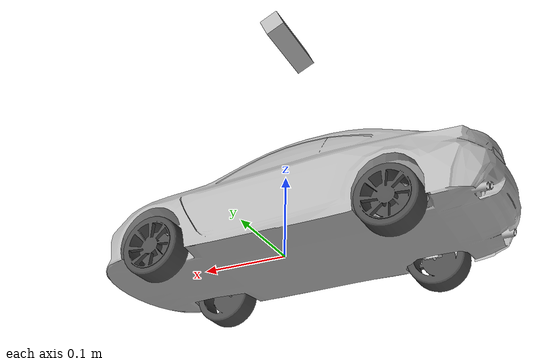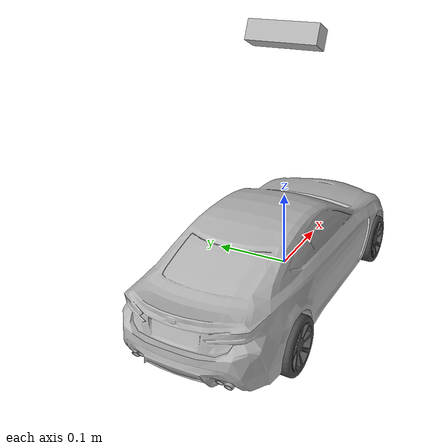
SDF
<?xml version='1.0'?>
<sdf version='1.6'>
  <model name='automobile'>
    <include>
      <uri>model://chassis</uri>
      <pose>0 0 0 0 0 0</pose>
    </include>

    <!-- including a left rear wheel -->
    <include>
      <uri>model://wheel_left</uri>
      <pose>-0.152 0.081 0 0 0 0</pose>
      <name>wheel_rear_left</name>
    </include>

    <!-- including a front rear wheel -->
    <include>
      <uri>model://wheel_right</uri>
      <pose>-0.152 -0.081 0 0 0 0</pose>
      <name>wheel_rear_right</name>
    </include>

    <!-- including a left steering comp. -->
    <include>
      <uri>model://steering_column</uri>
      <pose>0.112 0.0725 0 0 0 0</pose>
      <name>steer_left</name>
    </include>

    <!-- including a right steering comp. -->
    <include>
      <uri>model://steering_column</uri>
      <pose>0.112 -0.0725 0 0 0 0</pose>
      <name>steer_right</name>
    </include>

    <!-- including a left front wheel -->
    <include>
      <uri>model://wheel_left</uri>
      <pose>0.118 0.081 0 0 0 0</pose>
      <name>wheel_front_left</name>
    </include>

    <!-- including a right front wheel -->
    <include>
      <uri>model://wheel_right</uri>
      <pose>0.118 -0.081 0 0 0 0</pose>
      <name>wheel_front_right</name>
    </include>

    <!-- RealSense depth camera link -->
    <link name='realsense_link'>
      <!-- 카메라 위치/자세: x=0.0, y=0.0, z=0.18, pitch=+15deg -->
      <pose>0 0 0.3 0 0.436332 0</pose>
      <inertial>
        <pose>0 0 0 0 0 0</pose>
        <inertia>
          <ixx>0.001</ixx>
          <iyy>0.001</iyy>
          <izz>0.001</izz>
        </inertia>
        <mass>0.564</mass>
      </inertial>

      <visual name='realsense_visual'>
        <geometry>
          <box>
            <size>0.025 0.09 0.025</size>
          </box>
        </geometry>
      </visual>

      <collision name='realsense_collision'>
        <geometry>
          <box>
            <size>0.025 0.09 0.025</size>
          </box>
        </geometry>
      </collision>

      <!-- Depth camera (D455: HFOV ~87°, 848x480) -->
      <sensor name='cameradepth' type='depth'>
        <camera name='camera'>
          <!-- 87 deg ≈ 1.518436 rad -->
          <horizontal_fov>1.518436</horizontal_fov>
          <image>
            <width>848</width>
            <height>480</height>
          </image>
          <clip>
            <near>0.1</near>
            <far>15.0</far>
          </clip>
          <noise>
            <type>gaussian</type>
            <mean>0.0</mean>
            <stddev>0.005</stddev> <!-- ≈5mm -->
          </noise>
        </camera>
        <always_on>1</always_on>
        <update_rate>30</update_rate>
        <visualize>0</visualize>
      </sensor>

      <!-- Color camera (D455: HFOV ~90°, 640x480) -->
      <sensor name='cameracolor' type='camera'>
        <camera name='camera'>
          <!-- 90 deg ≈ 1.570796 rad -->
          <horizontal_fov>1.570796</horizontal_fov>
          <image>
            <width>640</width>
            <height>480</height>
            <format>RGB_INT8</format>
          </image>
          <clip>
            <near>0.1</near>
            <far>20.0</far>
          </clip>
          <noise>
            <type>gaussian</type>
            <mean>0.0</mean>
            <stddev>0.007</stddev>
          </noise>
        </camera>
        <always_on>1</always_on>
        <update_rate>30</update_rate>
        <visualize>1</visualize>
      </sensor>

      <!-- IR Left (HFOV ~87°, 848x480) -->
      <sensor name='cameraired1' type='camera'>
        <camera name='camera'>
          <!-- Depth와 동일 HFOV 사용 -->
          <horizontal_fov>1.518436</horizontal_fov>
          <image>
            <width>848</width>
            <height>480</height>
            <format>L_INT8</format>
          </image>
          <clip>
            <near>0.1</near>
            <far>15.0</far>
          </clip>
          <noise>
            <type>gaussian</type>
            <mean>0.0</mean>
            <stddev>0.05</stddev>
          </noise>
        </camera>
        <always_on>1</always_on>
        <update_rate>30</update_rate>
        <visualize>0</visualize>
      </sensor>

      <!-- IR Right (HFOV ~87°, 848x480) -->
      <sensor name='cameraired2' type='camera'>
        <camera name='camera'>
          <horizontal_fov>1.518436</horizontal_fov>
          <image>
            <width>848</width>
            <height>480</height>
            <format>L_INT8</format>
          </image>
          <clip>
            <near>0.1</near>
            <far>15.0</far>
          </clip>
          <noise>
            <type>gaussian</type>
            <mean>0.0</mean>
            <stddev>0.05</stddev>
          </noise>
        </camera>
        <always_on>1</always_on>
        <update_rate>30</update_rate>
        <visualize>0</visualize>
      </sensor>
    </link>

    <!-- includeing the car body -->
    <include>
      <uri>model://car_body</uri>
      <pose>-0.024 0.0 -0.028 0 0.0 0</pose>
      <name>car_body</name>
    </include>

    <!-- LIST OF JOINTS (원문 그대로) -->
    <joint name='joint_leftrear_rim' type='revolute'>
      <parent>chassis::link</parent>
      <child>wheel_rear_left::link_rim</child>
      <pose frame=''>0 0 0 0 -0 0</pose>
      <axis>
        <xyz>0 0 -1</xyz>
        <use_parent_model_frame>0</use_parent_model_frame>
        <limit>
          <lower>-1.79769e+308</lower>
          <upper>1.79769e+308</upper>
          <effort>-1</effort>
          <velocity>-1</velocity>
        </limit>
        <dynamics>
          <spring_reference>0</spring_reference>
          <spring_stiffness>0</spring_stiffness>
          <damping>0</damping>
          <friction>0</friction>
        </dynamics>
      </axis>
      <physics>
        <ode>
          <limit><cfm>0</cfm><erp>0.2</erp></limit>
          <suspension><cfm>0</cfm><erp>0.2</erp></suspension>
        </ode>
      </physics>
    </joint>

    <joint name='joint_rightrear_rim' type='revolute'>
      <parent>chassis::link</parent>
      <child>wheel_rear_right::link_rim</child>
      <pose frame=''>0 0 0 0 -0 0</pose>
      <axis>
        <xyz>0 0 -1</xyz>
        <use_parent_model_frame>0</use_parent_model_frame>
        <limit>
          <lower>-1.79769e+308</lower>
          <upper>1.79769e+308</upper>
          <effort>-1</effort>
          <velocity>-1</velocity>
        </limit>
        <dynamics>
          <spring_reference>0</spring_reference>
          <spring_stiffness>0</spring_stiffness>
          <damping>0</damping>
          <friction>0</friction>
        </dynamics>
      </axis>
      <physics>
        <ode>
          <limit><cfm>0</cfm><erp>0.2</erp></limit>
          <suspension><cfm>0</cfm><erp>0.2</erp></suspension>
        </ode>
      </physics>
    </joint>

    <!-- Front right joint between the chassis and the steering comp. -->
    <joint name='joint_leftfront_steer' type='revolute'>
      <parent>chassis::link</parent>
      <child>steer_left::link_steer</child>
      <pose frame=''>0 0 0.005 0 -0 0</pose>
      <axis>
        <xyz>0 1 0</xyz>
        <use_parent_model_frame>0</use_parent_model_frame>
        <limit>
          <lower>-1.79769e+308</lower>
          <upper>1.79769e+308</upper>
          <effort>-1</effort>
          <velocity>-1</velocity>
        </limit>
        <dynamics>
          <spring_reference>0</spring_reference>
          <spring_stiffness>0</spring_stiffness>
          <damping>0</damping>
          <friction>0</friction>
        </dynamics>
      </axis>
      <physics>
        <ode>
          <limit><cfm>0</cfm><erp>0.2</erp></limit>
          <suspension><cfm>0</cfm><erp>0.2</erp></suspension>
        </ode>
      </physics>
    </joint>

    <!-- Front left joint between the chassis and the steering comp. -->
    <joint name='joint_rightfront_steer' type='revolute'>
      <parent>chassis::link</parent>
      <child>steer_right::link_steer</child>
      <pose frame=''>0 0 -0.005 0 -0 0</pose>
      <axis>
        <xyz>0 1 0</xyz>
        <use_parent_model_frame>0</use_parent_model_frame>
        <limit>
          <lower>-1.79769e+308</lower>
          <upper>1.79769e+308</upper>
          <effort>-1</effort>
          <velocity>-1</velocity>
        </limit>
        <dynamics>
          <spring_reference>0</spring_reference>
          <spring_stiffness>0</spring_stiffness>
          <damping>0</damping>
          <friction>0</friction>
        </dynamics>
      </axis>
      <physics>
        <ode>
          <limit><cfm>0</cfm><erp>0.2</erp></limit>
          <suspension><cfm>0</cfm><erp>0.2</erp></suspension>
        </ode>
      </physics>
    </joint>

    <!-- Right joint between the steering and the rim   -->
    <joint name='joint_rightfront_rim' type='revolute'>
      <parent>steer_right::link_steer</parent>
      <child>wheel_front_right::link_rim</child>
      <pose frame=''>0 0 0 0 -0 0</pose>
      <axis>
        <xyz>0 0 -1</xyz>
        <use_parent_model_frame>0</use_parent_model_frame>
        <limit>
          <lower>-1.79769e+308</lower>
          <upper>1.79769e+308</upper>
          <effort>-1</effort>
          <velocity>-1</velocity>
        </limit>
        <dynamics>
          <spring_reference>0</spring_reference>
          <spring_stiffness>0</spring_stiffness>
          <damping>0</damping>
          <friction>0</friction>
        </dynamics>
      </axis>
      <physics>
        <ode>
          <limit><cfm>0</cfm><erp>0.2</erp></limit>
          <suspension><cfm>0</cfm><erp>0.2</erp></suspension>
        </ode>
      </physics>
    </joint>

    <!-- Left joint between the steering and the rim   -->
    <joint name='joint_leftfront_rim' type='revolute'>
      <parent>steer_left::link_steer</parent>
      <child>wheel_front_left::link_rim</child>
      <pose frame=''>0 0 0 0 -0 0</pose>
      <axis>
        <xyz>0 0 -1</xyz>
        <use_parent_model_frame>0</use_parent_model_frame>
        <limit>
          <lower>-1.79769e+308</lower>
          <upper>1.79769e+308</upper>
          <effort>-1</effort>
          <velocity>-1</velocity>
        </limit>
        <dynamics>
          <spring_reference>0</spring_reference>
          <spring_stiffness>0</spring_stiffness>
          <damping>0</damping>
          <friction>0</friction>
        </dynamics>
      </axis>
      <physics>
        <ode>
          <limit><cfm>0</cfm><erp>0.2</erp></limit>
          <suspension><cfm>0</cfm><erp>0.2</erp></suspension>
        </ode>
      </physics>
    </joint>

    <!-- fixed joint for the car body -->
    <joint name='joint_body' type='fixed'>
      <parent>chassis::link</parent>
      <child>car_body::link</child>
      <pose frame=''>0 0 0 0 -0 0</pose>
      <physics>
        <ode>
          <limit><cfm>0</cfm><erp>0.2</erp></limit>
          <suspension><cfm>0</cfm><erp>0.2</erp></suspension>
        </ode>
      </physics>
    </joint>

    <joint name='realsense_joint' type='fixed'>
      <parent>chassis::link</parent>
      <child>realsense_link</child>
      <pose>0 0 0 0 0 0</pose>
    </joint>

    <!-- RealSense Gazebo Plugin -->
    <plugin name='realsense_camera' filename='librealsense_gazebo_plugin.so'>
      <prefix>camera</prefix>

      <depthUpdateRate>30.0</depthUpdateRate>
      <colorUpdateRate>30.0</colorUpdateRate>
      <infraredUpdateRate>30.0</infraredUpdateRate>

      <depthTopicName>aligned_depth_to_color/image_raw</depthTopicName>
      <depthCameraInfoTopicName>depth/camera_info</depthCameraInfoTopicName>
      <colorTopicName>color/image_raw</colorTopicName>
      <colorCameraInfoTopicName>color/camera_info</colorCameraInfoTopicName>
      <infrared1TopicName>infra1/image_raw</infrared1TopicName>
      <infrared1CameraInfoTopicName>infra1/camera_info</infrared1CameraInfoTopicName>
      <infrared2TopicName>infra2/image_raw</infrared2TopicName>
      <infrared2CameraInfoTopicName>infra2/camera_info</infrared2CameraInfoTopicName>

      <colorOpticalframeName>camera_color_optical_frame</colorOpticalframeName>
      <depthOpticalframeName>camera_depth_optical_frame</depthOpticalframeName>
      <infrared1OpticalframeName>camera_left_ir_optical_frame</infrared1OpticalframeName>
      <infrared2OpticalframeName>camera_right_ir_optical_frame</infrared2OpticalframeName>

      <!-- depth range -->
      <rangeMinDepth>0.1</rangeMinDepth>
      <rangeMaxDepth>4.0</rangeMaxDepth>

      <!-- PointCloud on -->
      <pointCloud>true</pointCloud>
      <pointCloudTopicName>depth/color/points</pointCloudTopicName>
      <pointCloudCutoff>0.1</pointCloudCutoff>
    </plugin>

    <plugin name='CarLikeRobotPlugin' filename='libcar_plugin.so'>
      <wheelbase>0.26</wheelbase>
      <axletrack>0.162</axletrack>
      <wheelradius>0.0325</wheelradius>
      <speed_wheel_joints>
        <front_wheel_joints>
          <leftjoint>joint_leftfront_rim</leftjoint>
          <rightjoint>joint_rightfront_rim</rightjoint>
        </front_wheel_joints>
        <rear_wheel_joints>
          <leftjoint>joint_leftrear_rim</leftjoint>
          <rightjoint>joint_rightrear_rim</rightjoint>
        </rear_wheel_joints>
        <kp>0.01</kp>
        <ki>0.0</ki>
        <kd>0.0</kd>
      </speed_wheel_joints>
      <steer_wheel_joints>
        <leftjoint>joint_leftfront_steer</leftjoint>
        <rightjoint>joint_rightfront_steer</rightjoint>
        <kp>10</kp>
        <ki>0.0</ki>
        <kd>0.1</kd>
      </steer_wheel_joints>
      <initial_steer>0.0</initial_steer>
      <initial_speed>0.0</initial_speed>
      <robotNamespace>/</robotNamespace>
    </plugin>

    <plugin name='bno055' filename='libbno055_plugin.so'>
      <roll_noise_stddev>0.01</roll_noise_stddev>
      <pitch_noise_stddev>0.01</pitch_noise_stddev>
      <yaw_noise_stddev>0.01</yaw_noise_stddev>
      <angular_velocity_noise_stddev>0.005</angular_velocity_noise_stddev>
      <linear_acceleration_noise_stddev>0.1</linear_acceleration_noise_stddev>
      <imu_topic>/automobile/imu_raw</imu_topic>
      <imu_frame>base_link</imu_frame>
    </plugin>

    <plugin name='gps' filename='libgps_plugin.so'> </plugin>

    <plugin name='wheel_speed_encoder' filename='libwheel_speed_plugin.so'>
      <ros>
        <namespace>/automobile</namespace>
      </ros>
      <joint_name>joint_leftrear_rim</joint_name>
      <wheel_radius>0.0325</wheel_radius>
      <topic>/automobile/wheel_speed</topic>
      <twist_topic>/automobile/wheel_twist</twist_topic>
      <twist_frame>base_link</twist_frame>
      <twist_noise_stddev>0.01</twist_noise_stddev>
      <deadband>0.000</deadband>
      <update_rate>50</update_rate>
    </plugin>

    <plugin name='steering_angle' filename='libsteering_angle_plugin.so'>
      <ros>
        <namespace>/automobile</namespace>
      </ros>
      <left_joint>joint_leftfront_steer</left_joint>
      <right_joint>joint_rightfront_steer</right_joint>
      <topic>/automobile/steering_angle</topic>
      <update_rate>50</update_rate>
    </plugin>

  </model>
</sdf>

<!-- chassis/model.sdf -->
<sdf version='1.6'>
  <model name='chassis'>
    <link name='link'>
      <inertial>
        <mass>0.26244</mass>
        <inertia>
          <ixx>0.00283444</ixx>
          <ixy>0</ixy>
          <ixz>0</ixz>
          <iyy>0.00039867</iyy>
          <iyz>0</iyz>
          <izz>0.00323293</izz>
        </inertia>
        <pose frame=''>0 0 0 0 -0 0</pose>
      </inertial>
      <pose frame=''>0 0 0 0 0 1.5708</pose>
      <gravity>1</gravity>
      <kinematic>0</kinematic>
      <enable_wind>0</enable_wind>
      <visual name='visual'>
        <pose frame=''>0 0 -0.0065 0 0 -1.57079</pose>
        <geometry>
          <mesh>
            <uri>model://chassis/meshes/chassisV5.dae</uri>
            <scale>1 1 1</scale>
          </mesh>
        </geometry>
        <material>
          <lighting>1</lighting>
          <shader type='vertex'>
            <normal_map>__default__</normal_map>
          </shader>
          <ambient>0.6 0.6 0.6 1</ambient>
          <diffuse>0.85 0.85 0.85 1</diffuse>
          <specular>0.6 0.6 0.6 1</specular>
          <emissive>0 0 0 1</emissive>
        </material>
        <transparency>0</transparency>
        <cast_shadows>1</cast_shadows>
      </visual>
      <collision name='collision'>
        <laser_retro>0</laser_retro>
        <max_contacts>10</max_contacts>
        <pose frame=''>0 0 0 0 -0 0</pose>
        <geometry>
          <box>
            <size>0.135 0.36 0.002</size>
          </box>
        </geometry>
        <surface>
          <friction>
            <ode>
              <mu>1</mu>
              <mu2>1</mu2>
              <fdir1>0 0 0</fdir1>
              <slip1>0</slip1>
              <slip2>0</slip2>
            </ode>
            <torsional>
              <coefficient>1</coefficient>
              <patch_radius>0</patch_radius>
              <surface_radius>0</surface_radius>
              <use_patch_radius>1</use_patch_radius>
              <ode>
                <slip>0</slip>
              </ode>
            </torsional>
          </friction>
          <bounce>
            <restitution_coefficient>0</restitution_coefficient>
            <threshold>1e+06</threshold>
          </bounce>
          <contact>
            <collide_without_contact>0</collide_without_contact>
            <collide_without_contact_bitmask>1</collide_without_contact_bitmask>
            <collide_bitmask>1</collide_bitmask>
            <ode>
              <soft_cfm>0</soft_cfm>
              <soft_erp>0.2</soft_erp>
              <kp>1e+13</kp>
              <kd>1</kd>
              <max_vel>0.01</max_vel>
              <min_depth>0</min_depth>
            </ode>
            <bullet>
              <split_impulse>1</split_impulse>
              <split_impulse_penetration_threshold>-0.01</split_impulse_penetration_threshold>
              <soft_cfm>0</soft_cfm>
              <soft_erp>0.2</soft_erp>
              <kp>1e+13</kp>
              <kd>1</kd>
            </bullet>
          </contact>
        </surface>
      </collision>
    </link>
  </model>
</sdf>

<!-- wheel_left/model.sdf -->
<sdf version='1.6'>
  <model name='wheel_left'>

    <link name='link_rim'>
      <inertial>
        <mass>0.038</mass>
        <inertia>
          <ixx>0.00001283</ixx>
          <ixy>0</ixy>
          <ixz>0</ixz>
          <iyy>0.00001283</iyy>
          <iyz>0</iyz>
          <izz>0.00002069</izz>
        </inertia>
        <pose frame=''>0 0 0 0 -0 0</pose>
      </inertial>
      <pose frame=''>0.0 0.0 0 1.5708 0 0</pose>
      <gravity>1</gravity>
      <kinematic>0</kinematic>
      <enable_wind>0</enable_wind>
      <visual name='visual'>
       <pose frame=''>0 0 0 -1.5708 0 0</pose>
       <geometry>
          <mesh>
            <uri>model://wheel_left/meshes/rim.dae</uri>
            <scale>1 1 1</scale>
          </mesh>
        </geometry>
        <material>
          <lighting>1</lighting>
          <shader type='vertex'>
            <normal_map>__default__</normal_map>
          </shader>
          <ambient>0.2 0.2 0.2 1</ambient>
          <diffuse>0.3 0.3 0.3 1</diffuse>
          <specular>0.5 0.5 0.5 1</specular>
          <emissive>0.0 0.0 0.0 0.0</emissive>
        </material>
        <transparency>0</transparency>
        <cast_shadows>1</cast_shadows>
      </visual>
      <collision name='collision'>
        <laser_retro>0</laser_retro>
        <max_contacts>10</max_contacts>
        <pose frame=''>0 0 0 0 -0 0</pose>
        <geometry>
          <cylinder>
            <radius>0.033000</radius>
            <length>0.028000</length>
          </cylinder>
        </geometry>
        <surface>
          <friction>
            <ode>
              <mu>0.7</mu>
              <mu2>0.7</mu2>
              <fdir1>0 0 0</fdir1>
              <slip1>0</slip1>
              <slip2>0</slip2>
            </ode>
            <torsional>
              <coefficient>1</coefficient>
              <patch_radius>0</patch_radius>
              <surface_radius>0</surface_radius>
              <use_patch_radius>1</use_patch_radius>
              <ode>
                <slip>0</slip>
              </ode>
            </torsional>
          </friction>
          <bounce>
            <restitution_coefficient>0</restitution_coefficient>
            <threshold>1e+06</threshold>
          </bounce>
          <contact>
            <collide_without_contact>0</collide_without_contact>
            <collide_without_contact_bitmask>1</collide_without_contact_bitmask>
            <collide_bitmask>1</collide_bitmask>
            <ode>
              <soft_cfm>0</soft_cfm>
              <soft_erp>0.2</soft_erp>
              <kp>1e+07</kp>
              <kd>1</kd>
              <max_vel>0.01</max_vel>
              <min_depth>0</min_depth>
            </ode>
            <bullet>
              <split_impulse>1</split_impulse>
              <split_impulse_penetration_threshold>-0.01</split_impulse_penetration_threshold>
              <soft_cfm>0</soft_cfm>
              <soft_erp>0.2</soft_erp>
              <kp>1e+07</kp>
              <kd>1</kd>
            </bullet>
          </contact>
        </surface>
      </collision>
    </link>

  </model>
</sdf>

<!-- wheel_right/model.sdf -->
<sdf version='1.6'>
  <model name='wheel_right'>

    <link name='link_rim'>
      <inertial>
        <mass>0.038</mass>
        <inertia>
          <ixx>0.00001283</ixx>
          <ixy>0</ixy>
          <ixz>0</ixz>
          <iyy>0.00001283</iyy>
          <iyz>0</iyz>
          <izz>0.00002069</izz>
        </inertia>
        <pose frame=''>0 0 0 0 -0 0</pose>
      </inertial>
      <pose frame=''>0.0 0.0 0 1.5708 0 0</pose>
      <gravity>1</gravity>
      <kinematic>0</kinematic>
      <enable_wind>0</enable_wind>
      <visual name='visual'>
       <pose frame=''>0 0 0 -1.5708 0 0</pose>
       <geometry>
          <mesh>
            <uri>model://wheel_right/meshes/rim.dae</uri>
            <scale>1 1 1</scale>
          </mesh>
        </geometry>
        <material>
          <lighting>1</lighting>
          <shader type='vertex'>
            <normal_map>__default__</normal_map>
          </shader>
          <ambient>0.2 0.2 0.2 1</ambient>
          <diffuse>0.3 0.3 0.3 1</diffuse>
          <specular>0.5 0.5 0.5 1</specular>
          <emissive>0.0 0.0 0.0 0.0</emissive>
        </material>
        <transparency>0</transparency>
        <cast_shadows>1</cast_shadows>
      </visual>
      <collision name='collision'>
        <laser_retro>0</laser_retro>
        <max_contacts>10</max_contacts>
        <pose frame=''>0 0 0 0 -0 0</pose>
        <geometry>
          <cylinder>
            <radius>0.033000</radius>
            <length>0.028000</length>
          </cylinder>
        </geometry>
        <surface>
          <friction>
            <ode>
              <mu>0.7</mu>
              <mu2>0.7</mu2>
              <fdir1>0 0 0</fdir1>
              <slip1>0</slip1>
              <slip2>0</slip2>
            </ode>
            <torsional>
              <coefficient>1</coefficient>
              <patch_radius>0</patch_radius>
              <surface_radius>0</surface_radius>
              <use_patch_radius>1</use_patch_radius>
              <ode>
                <slip>0</slip>
              </ode>
            </torsional>
          </friction>
          <bounce>
            <restitution_coefficient>0</restitution_coefficient>
            <threshold>1e+06</threshold>
          </bounce>
          <contact>
            <collide_without_contact>0</collide_without_contact>
            <collide_without_contact_bitmask>1</collide_without_contact_bitmask>
            <collide_bitmask>1</collide_bitmask>
            <ode>
              <soft_cfm>0</soft_cfm>
              <soft_erp>0.2</soft_erp>
              <kp>1e+07</kp>
              <kd>1</kd>
              <max_vel>0.01</max_vel>
              <min_depth>0</min_depth>
            </ode>
            <bullet>
              <split_impulse>1</split_impulse>
              <split_impulse_penetration_threshold>-0.01</split_impulse_penetration_threshold>
              <soft_cfm>0</soft_cfm>
              <soft_erp>0.2</soft_erp>
              <kp>1e+07</kp>
              <kd>1</kd>
            </bullet>
          </contact>
        </surface>
      </collision>
    </link>

  </model>
</sdf>

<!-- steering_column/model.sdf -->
<sdf version='1.6'>
  <model name='steering_column'>
    <link name='link_steer'>
      <inertial>
        <mass>0.001</mass>
        <inertia>
          <ixx>0.00014583</ixx>
          <ixy>0</ixy>
          <ixz>0</ixz>
          <iyy>0.00014583</iyy>
          <iyz>0</iyz>
          <izz>0.000125</izz>
        </inertia>
        <pose frame=''>0 0 0 0 -0 0</pose>
      </inertial>
      <pose frame=''>0 0 0 1.5708 0 0</pose>
      <gravity>1</gravity>
      <self_collide>0</self_collide>
      <kinematic>0</kinematic>
      <enable_wind>0</enable_wind>
      <visual name='visual'>
        <pose frame=''>0 0 0 0 -0 0</pose>
        <geometry>
          <cylinder>
            <radius>0.001</radius>
            <length>0.01</length>
          </cylinder>
        </geometry>
        <material>
          <lighting>1</lighting>
          <script>
            <uri>file://media/materials/scripts/gazebo.material</uri>
            <name>Gazebo/Grey</name>
          </script>
          <shader type='vertex'>
            <normal_map>__default__</normal_map>
          </shader>
          <ambient>0.3 0.3 0.3 1</ambient>
          <diffuse>0.7 0.7 0.7 1</diffuse>
          <specular>0.01 0.01 0.01 1</specular>
          <emissive>0 0 0 1</emissive>
        </material>
        <transparency>0</transparency>
        <cast_shadows>1</cast_shadows>
      </visual>
      <collision name='collision'>
        <laser_retro>0</laser_retro>
        <max_contacts>10</max_contacts>
        <pose frame=''>0 0 0 0 -0 0</pose>
        <geometry>
          <cylinder>
            <radius>0.001</radius>
            <length>0.01</length>
          </cylinder>
        </geometry>
        <surface>
          <friction>
            <ode>
              <mu>1</mu>
              <mu2>1</mu2>
              <fdir1>0 0 0</fdir1>
              <slip1>0</slip1>
              <slip2>0</slip2>
            </ode>
            <torsional>
              <coefficient>1</coefficient>
              <patch_radius>0</patch_radius>
              <surface_radius>0</surface_radius>
              <use_patch_radius>1</use_patch_radius>
              <ode>
                <slip>0</slip>
              </ode>
            </torsional>
          </friction>
          <bounce>
            <restitution_coefficient>0</restitution_coefficient>
            <threshold>1e+06</threshold>
          </bounce>
          <contact>
            <collide_without_contact>0</collide_without_contact>
            <collide_without_contact_bitmask>1</collide_without_contact_bitmask>
            <collide_bitmask>1</collide_bitmask>
            <ode>
              <soft_cfm>0</soft_cfm>
              <soft_erp>0.2</soft_erp>
              <kp>1e+13</kp>
              <kd>1</kd>
              <max_vel>0.01</max_vel>
              <min_depth>0</min_depth>
            </ode>
            <bullet>
              <split_impulse>1</split_impulse>
              <split_impulse_penetration_threshold>-0.01</split_impulse_penetration_threshold>
              <soft_cfm>0</soft_cfm>
              <soft_erp>0.2</soft_erp>
              <kp>1e+13</kp>
              <kd>1</kd>
            </bullet>
          </contact>
        </surface>
      </collision>
    </link>

  </model>
</sdf>

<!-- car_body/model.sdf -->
<sdf version='1.6'>
  <model name='body'>
    <link name='link'>
      <inertial>
        <mass>1</mass>
        <inertia>
          <ixx>0.166667</ixx>
          <ixy>0</ixy>
          <ixz>0</ixz>
          <iyy>0.166667</iyy>
          <iyz>0</iyz>
          <izz>0.166667</izz>
        </inertia>
      </inertial>
      <pose frame=''>0 -0 0 0 -0 0</pose>
      <visual name='visual'>
        <pose frame=''>0 0 0 0 -0 0</pose>
        <geometry>
          <mesh>
            <uri>model://car_body/meshes/CarBody.dae</uri>
            <scale>1 1 1</scale>
          </mesh>
        </geometry>
        <material>
            <script>
              <uri>model://car_body/materials/scripts</uri>
              <uri>model://car_body/materials/textures</uri>
              <name>CarBody/Image</name>
            </script>
        </material>
        <transparency>0</transparency>
        <cast_shadows>1</cast_shadows>
      </visual>
    </link>
    <static>0</static>
    <allow_auto_disable>1</allow_auto_disable>
  </model>
</sdf>
